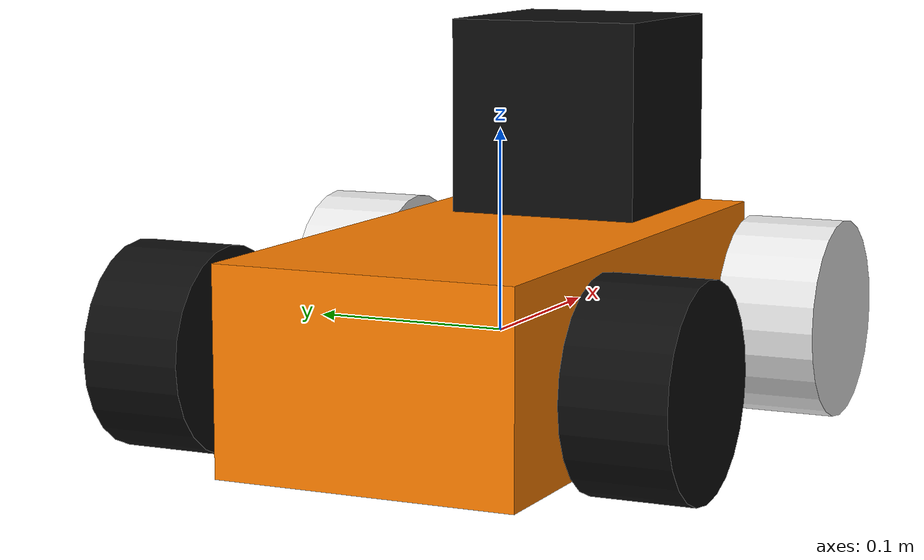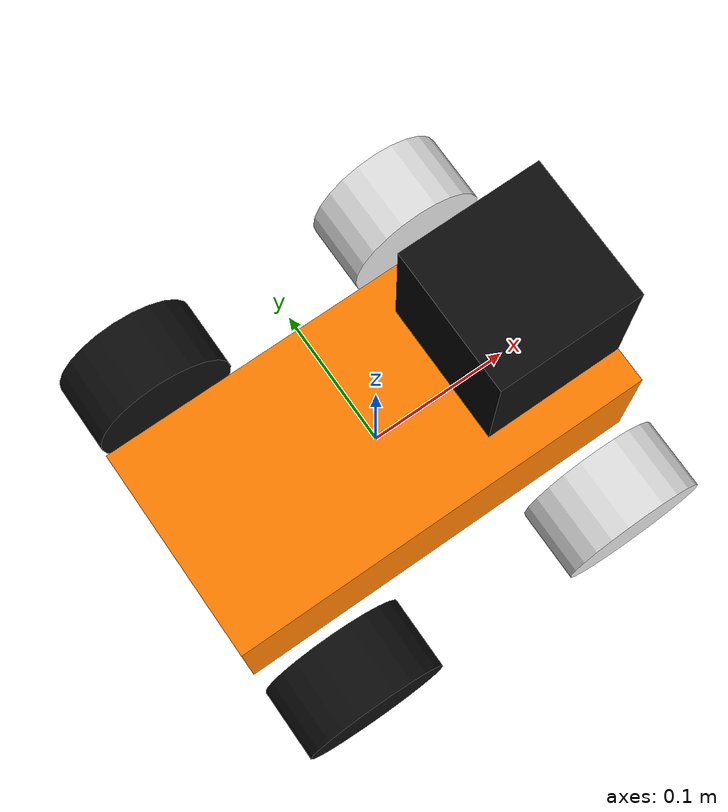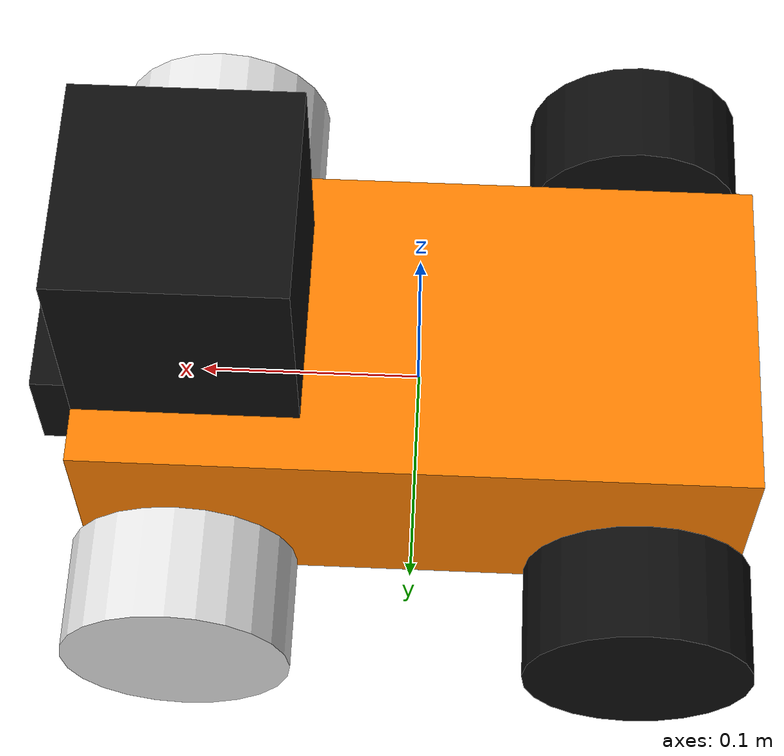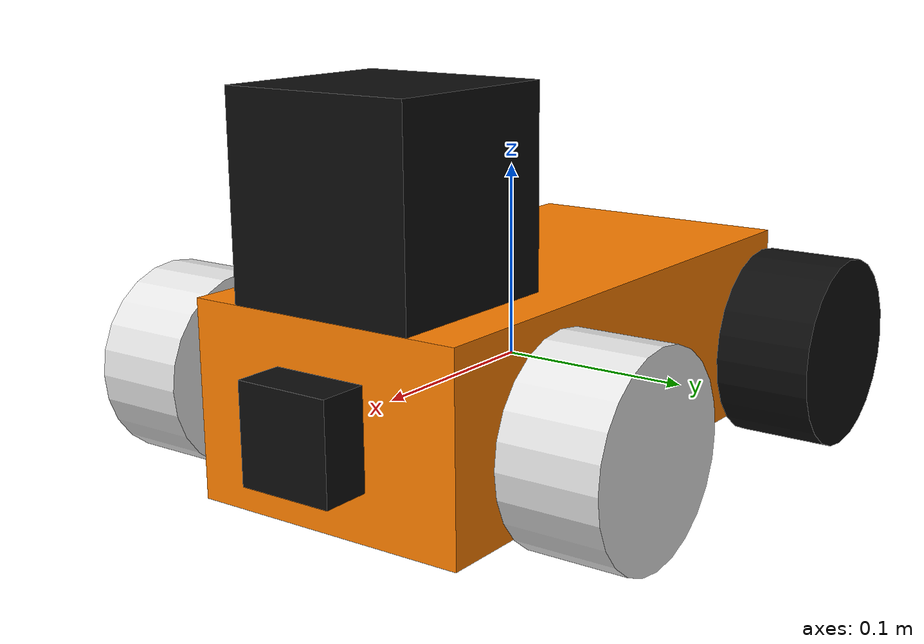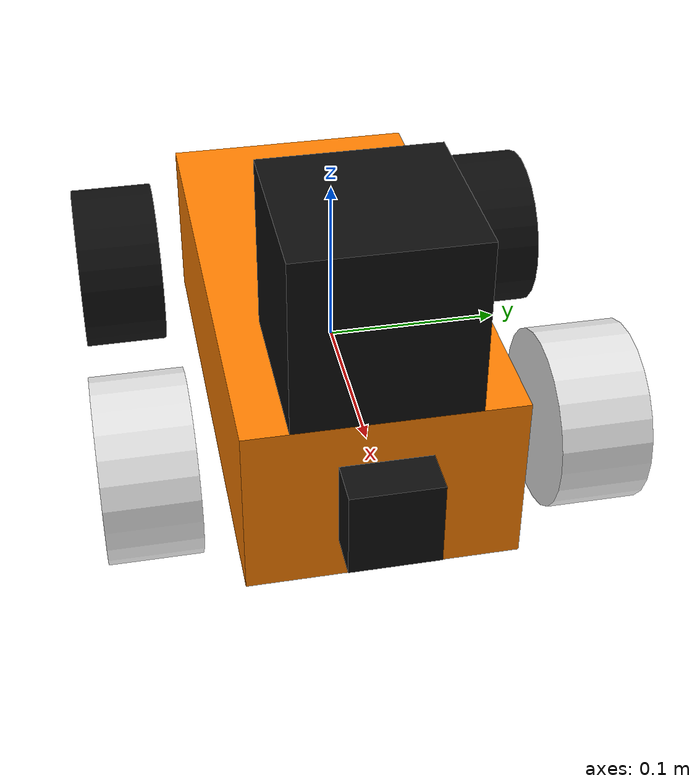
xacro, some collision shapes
<?xml version='1.0'?>

<robot name="udacity_bot" xmlns:xacro="http://www.ros.org/wiki/xacro">
<xacro:include filename="$(find udacity_bot)/urdf/udacity_bot.gazebo" />

  <link name="robot_footprint"></link>

  <joint name="robot_footprint_joint" type="fixed">
    <origin xyz="0 0 0" rpy="0 0 0" />
    <parent link="robot_footprint"/>
    <child link="chassis" />
  </joint>

  <link name='chassis'>
    <pose>0 0 0.1 0 0 0</pose>

    <inertial>
      <mass value="5.0"/>
      <origin xyz="0.0 0 0" rpy=" 0 0 0"/>
      <inertia
          ixx="0.1" ixy="0" ixz="0"
          iyy="0.1" iyz="0"
          izz="0.1"
      />
    </inertial>

    <collision name='collision'>
      <origin xyz="0 0 0" rpy=" 0 0 0"/>
      <geometry>
        <box size=".3 .15 .1"/>
      </geometry>
    </collision>

    <visual name='chassis_visual'>
      <origin xyz="0 0 0" rpy=" 0 0 0"/>
      <geometry>
        <box size=".3 .15 .1"/>
      </geometry>
      <material name="Orange">
      	<color rgba="1.0 0.5 0.0 1.0"/>
      </material>
    </visual>

  </link>

  <link name="left_wheel">

    <visual name='left_wheel_visual'>
      <origin xyz="0 0 0" rpy=" 0 1.5707 1.5707"/>
      <geometry>
        <cylinder length="0.05" radius="0.05"/>
      </geometry>
      <material name="Grey2">
      	<color rgba="0.9 0.9 0.9 1.0"/>
      </material>
    </visual>
    <collision name='left_wheel_collision'>
      <origin xyz="0 0 0" rpy=" 0 1.5707 1.5707"/>
      <geometry>
        <cylinder length="0.05" radius="0.05"/>
      </geometry>
    </collision>

    <inertial>
      <mass value="1.0"/>
      <origin xyz="0.0 0 0" rpy=" 0 1.5707 1.5707"/>
      <inertia
          ixx="0.1" ixy="0" ixz="0"
          iyy="0.1" iyz="0"
          izz="0.1"
      />
    </inertial>

  </link>

  <link name="right_wheel">

    <visual name='right_wheel_visual'>
      <origin xyz="0 0 0" rpy=" 0 1.5707 1.5707"/>
      <geometry>
        <cylinder length="0.05" radius="0.05"/>
      </geometry>
      <material name="Grey2">
      	<color rgba="0.9 0.9 0.9 1.0"/>
      </material>
    </visual>
    <collision name='right_wheel_collision'>
      <origin xyz="0 0 0" rpy=" 0 1.5707 1.5707"/>
      <geometry>
        <cylinder length="0.05" radius="0.05"/>
      </geometry>
    </collision>

    <inertial>
      <mass value="1.0"/>
      <origin xyz="0.0 0 0" rpy=" 0 1.5707 1.5707"/>
      <inertia
          ixx="0.1" ixy="0" ixz="0"
          iyy="0.1" iyz="0"
          izz="0.1"
      />
    </inertial>

  </link>

 <link name="left_wheel1">

    <visual name='left_wheel1_visual'>
      <origin xyz="0 0 0" rpy=" 0 1.5707 1.5707"/>
      <geometry>
        <cylinder length="0.05" radius="0.05"/>
      </geometry>
      <material name="Black">
      	<color rgba="0.05 0.05 0.05 1.0"/>
      </material>
    </visual>
    <collision name='left_wheel1_collision'>
      <origin xyz="0 0 0" rpy=" 0 1.5707 1.5707"/>
      <geometry>
        <cylinder length="0.05" radius="0.05"/>
      </geometry>
      <surface>
        <friction>
          <ode>
            <mu>0</mu>
            <mu2>0</mu2>
            <slip1>1.0</slip1>
            <slip2>1.0</slip2>
          </ode>
        </friction>
      </surface>
    </collision>

  </link>

  <link name="right_wheel1">

    <visual name='right_wheel1_visual'>
      <origin xyz="0 0 0" rpy=" 0 1.5707 1.5707"/>
      <geometry>
        <cylinder length="0.05" radius="0.05"/>
      </geometry>
      <material name="Black">
      	<color rgba="0.05 0.05 0.05 1.0"/>
      </material>
    </visual>
    <collision name='right_wheel1_collision'>
      <origin xyz="0 0 0" rpy=" 0 1.5707 1.5707"/>
      <geometry>
        <cylinder length="0.05" radius="0.05"/>
      </geometry>
      <surface>
        <friction>
          <ode>
            <mu>0</mu>
            <mu2>0</mu2>
            <slip1>1.0</slip1>
            <slip2>1.0</slip2>
          </ode>
        </friction>
      </surface>
    </collision>

  </link>

  <link name="camera">

    <visual name='camera_visual'>
      <origin xyz="0 0 0" rpy=" 0 0 0"/>
      <geometry>
        <box size="0.05 0.05 0.05"/>
      </geometry>
      <material name="Black">
      	<color rgba="0.05 0.05 0.05 1.0"/>
      </material>
    </visual>
    <collision name='camera_collision'>
      <origin xyz="0 0 0" rpy=" 0 0 0"/>
      <geometry>
        <box size="0.05 0.05 0.05"/>
      </geometry>
    </collision>

    <inertial>
      <mass value="0.1"/>
      <origin xyz="0.0 0 0" rpy=" 0 0 0"/>
      <inertia
          ixx="1e-6" ixy="0" ixz="0"
          iyy="1e-6" iyz="0"
          izz="1e-6"
      />
    </inertial>

  </link>

  <link name="hokuyo">

    <visual name='hokuyo_visual'>
      <origin xyz="0 0 0" rpy=" 0 0 0"/>
      <geometry>
	<mesh filename="package://udacity_bot/meshes/hokuyo.dae"/>
      </geometry>
      <material name="Black">
      	<color rgba="0.05 0.05 0.05 1.0"/>
      </material>
    </visual>
    <collision name='hokuyo_collision'>
      <origin xyz="0 0 0" rpy=" 0 0 0"/>
      <geometry>
        <box size="0.1 0.1 0.1"/>
      </geometry>
    </collision>

    <inertial>
      <mass value="0.1"/>
      <origin xyz="0.0 0 0" rpy=" 0 0 0"/>
      <inertia
	ixx="1e-6" ixy="0" ixz="0"
        iyy="1e-6" iyz="0"
        izz="1e-6"
      />
    </inertial>

  </link>

  <joint name="hokuyo_joint" type="fixed">
    <origin xyz="0.10 0.0 0.1" rpy="0 0 0" />
    <parent link="chassis"/>
    <child link="hokuyo" />
  </joint>

  <joint name="camera_joint" type="fixed">
    <origin xyz="0.15 0 0" rpy="0 0 0" />
    <parent link="chassis"/>
    <child link="camera" />
  </joint>

  <joint type="continuous" name="left_wheel_hinge">
    <origin xyz="0.1 0.12 0" rpy="0 0 0"/>
    <child link="left_wheel"/>
    <parent link="chassis"/>
    <axis xyz="0 1 0" rpy="0 0 0"/>
    <limit effort="10000" velocity="1000"/>
    <joint_properties damping="1.0" friction="1.0"/>
  </joint>

  <joint type="continuous" name="right_wheel_hinge">
    <origin xyz="0.1 -0.12 0" rpy="0 0 0"/>
    <child link="right_wheel"/>
    <parent link="chassis"/>
    <axis xyz="0 1 0" rpy="0 0 0"/>
    <limit effort="10000" velocity="1000"/>
    <joint_properties damping="1.0" friction="1.0"/>
  </joint>

  <joint type="continuous" name="left_wheel1_hinge">
    <origin xyz="-0.1 0.12 0" rpy="0 0 0"/>
    <child link="left_wheel1"/>
    <parent link="chassis"/>
    <axis xyz="0 1 0" rpy="0 0 0"/>
    <limit effort="10000" velocity="1000"/>
    <joint_properties damping="1.0" friction="1.0"/>
  </joint>

  <joint type="continuous" name="right_wheel1_hinge">
    <origin xyz="-0.1 -0.12 0" rpy="0 0 0"/>
    <child link="right_wheel1"/>
    <parent link="chassis"/>
    <axis xyz="0 1 0" rpy="0 0 0"/>
    <limit effort="10000" velocity="1000"/>
    <joint_properties damping="1.0" friction="1.0"/>
  </joint>

</robot>
